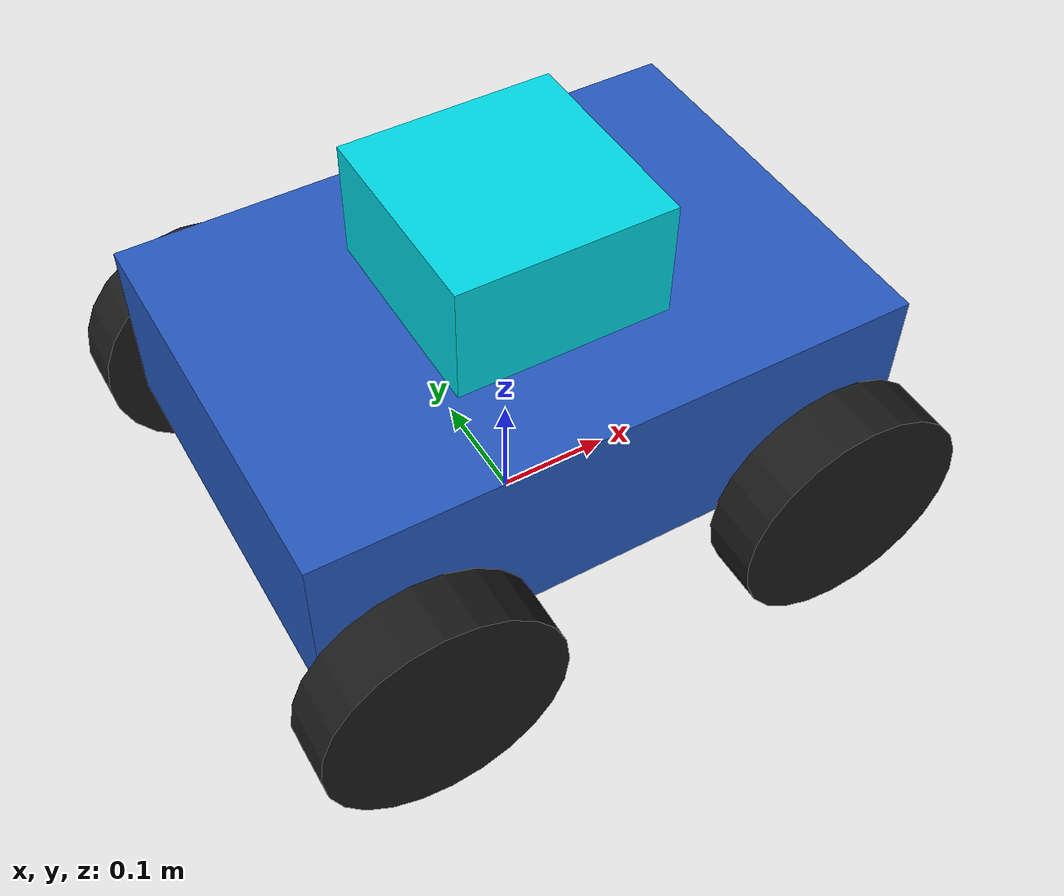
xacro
<?xml version="1.0"?>
<!-- Copyright 2026 Diego Eduardo Martinez Cruz / SPDX-License-Identifier: MIT -->
<robot name="quantum_rover" xmlns:xacro="http://www.ros.org/wiki/xacro">

  <!-- ===================== Properties ============================= -->
  <xacro:property name="body_length" value="0.5"/>
  <xacro:property name="body_width"  value="0.35"/>
  <xacro:property name="body_height" value="0.15"/>
  <xacro:property name="body_mass"   value="5.0"/>

  <xacro:property name="wheel_radius" value="0.1"/>
  <xacro:property name="wheel_width"  value="0.05"/>
  <xacro:property name="wheel_mass"   value="0.5"/>

  <xacro:property name="wheel_xoff" value="0.18"/>
  <xacro:property name="wheel_yoff" value="0.21"/>

  <!-- ===================== Materials ============================== -->
  <material name="rover_blue"><color rgba="0.15 0.35 0.75 1.0"/></material>
  <material name="wheel_dark"><color rgba="0.1 0.1 0.1 1.0"/></material>
  <material name="quantum_cyan"><color rgba="0.0 0.85 0.9 1.0"/></material>

  <!-- ===================== Inertial macros ======================= -->
  <xacro:macro name="box_inertia" params="m x y z">
    <inertial>
      <mass value="${m}"/>
      <inertia ixx="${m*(y*y+z*z)/12.0}" ixy="0.0" ixz="0.0"
               iyy="${m*(x*x+z*z)/12.0}" iyz="0.0"
               izz="${m*(x*x+y*y)/12.0}"/>
    </inertial>
  </xacro:macro>

  <xacro:macro name="cylinder_inertia" params="m r l">
    <inertial>
      <mass value="${m}"/>
      <inertia ixx="${m*(3*r*r+l*l)/12.0}" ixy="0.0" ixz="0.0"
               iyy="${m*(3*r*r+l*l)/12.0}" iyz="0.0"
               izz="${m*r*r/2.0}"/>
    </inertial>
  </xacro:macro>

  <!-- ===================== Base ================================== -->
  <link name="base_footprint"/>

  <link name="base_link">
    <visual>
      <geometry><box size="${body_length} ${body_width} ${body_height}"/></geometry>
      <material name="rover_blue"/>
    </visual>
    <collision>
      <geometry><box size="${body_length} ${body_width} ${body_height}"/></geometry>
    </collision>
    <xacro:box_inertia m="${body_mass}" x="${body_length}" y="${body_width}" z="${body_height}"/>
  </link>

  <joint name="base_joint" type="fixed">
    <parent link="base_footprint"/>
    <child link="base_link"/>
    <origin xyz="0 0 ${wheel_radius + body_height/2}" rpy="0 0 0"/>
  </joint>

  <!-- A small "quantum payload" pod to give the model some character. -->
  <link name="quantum_payload">
    <visual>
      <geometry><box size="0.18 0.18 0.1"/></geometry>
      <material name="quantum_cyan"/>
    </visual>
    <xacro:box_inertia m="0.3" x="0.18" y="0.18" z="0.1"/>
  </link>
  <joint name="payload_joint" type="fixed">
    <parent link="base_link"/>
    <child link="quantum_payload"/>
    <origin xyz="0 0 ${body_height/2 + 0.05}" rpy="0 0 0"/>
  </joint>

  <!-- ===================== Wheel macro =========================== -->
  <xacro:macro name="wheel" params="name x y">
    <link name="${name}">
      <visual>
        <origin xyz="0 0 0" rpy="${pi/2} 0 0"/>
        <geometry><cylinder radius="${wheel_radius}" length="${wheel_width}"/></geometry>
        <material name="wheel_dark"/>
      </visual>
      <collision>
        <origin xyz="0 0 0" rpy="${pi/2} 0 0"/>
        <geometry><cylinder radius="${wheel_radius}" length="${wheel_width}"/></geometry>
      </collision>
      <xacro:cylinder_inertia m="${wheel_mass}" r="${wheel_radius}" l="${wheel_width}"/>
    </link>

    <joint name="${name}_joint" type="continuous">
      <parent link="base_link"/>
      <child link="${name}"/>
      <origin xyz="${x} ${y} ${-body_height/2}" rpy="0 0 0"/>
      <axis xyz="0 1 0"/>
      <dynamics damping="0.05" friction="0.03"/>
    </joint>
  </xacro:macro>

  <xacro:wheel name="front_left_wheel"  x="${wheel_xoff}"  y="${wheel_yoff}"/>
  <xacro:wheel name="front_right_wheel" x="${wheel_xoff}"  y="${-wheel_yoff}"/>
  <xacro:wheel name="rear_left_wheel"   x="${-wheel_xoff}" y="${wheel_yoff}"/>
  <xacro:wheel name="rear_right_wheel"  x="${-wheel_xoff}" y="${-wheel_yoff}"/>

</robot>
